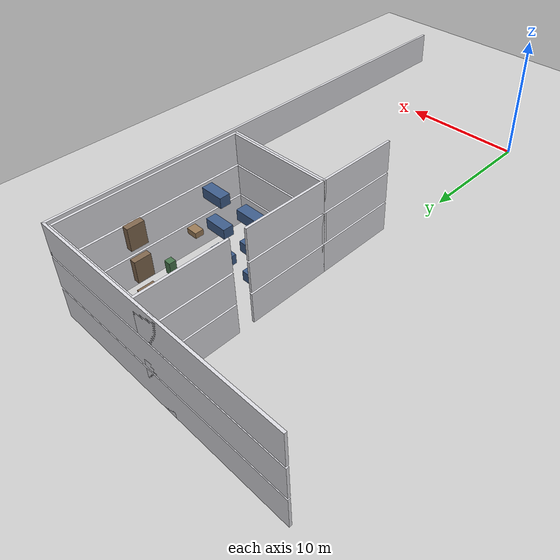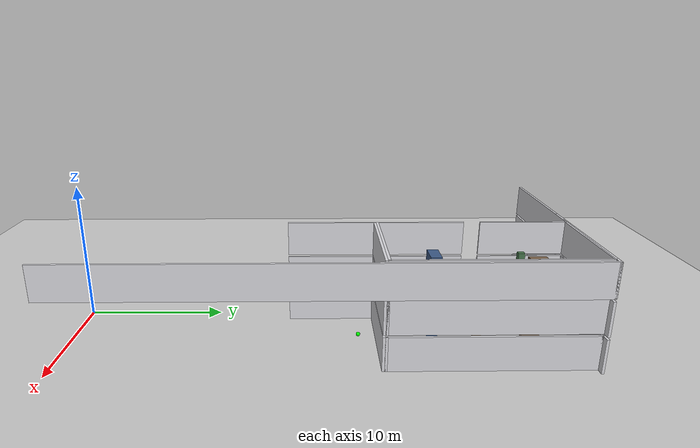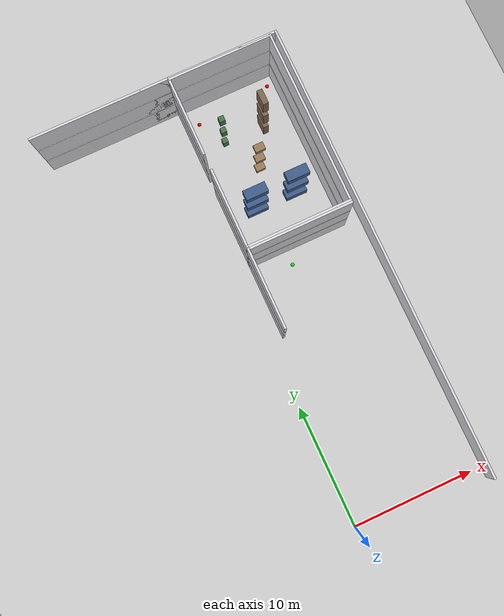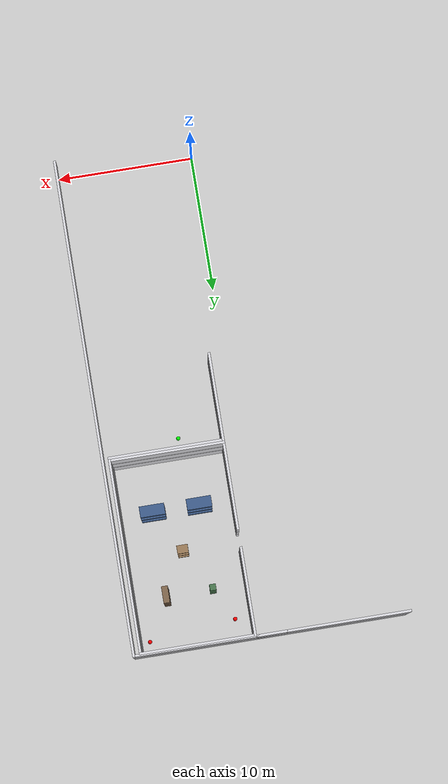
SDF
<sdf version="1.7">
 <world name="generated_world">
  <include><uri>model://sun</uri></include>
  <include><uri>model://ground_plane</uri></include>
  <model name="generated_building">
   <static>true</static>
   <link name="exterior_north_floor_0">
    <pose>0.0000 35.9100 1.2250 0.0000 0.0000 0.0000</pose>
    <collision name="exterior_north_floor_0_collision">
     <geometry><box><size>20.0000 0.1800 2.4500</size></box></geometry>
    </collision>
    <visual name="exterior_north_floor_0_visual">
     <geometry><box><size>20.0000 0.1800 2.4500</size></box></geometry>
     <material><ambient>0.86 0.86 0.88 1</ambient><diffuse>0.86 0.86 0.88 1</diffuse></material>
    </visual>
    <gravity>false</gravity>
   </link>
   <link name="north_end_wall_floor_0">
    <pose>0.0000 35.9100 1.2250 0.0000 0.0000 0.0000</pose>
    <collision name="north_end_wall_floor_0_collision">
     <geometry><box><size>2.2000 0.1800 2.4500</size></box></geometry>
    </collision>
    <visual name="north_end_wall_floor_0_visual">
     <geometry><box><size>2.2000 0.1800 2.4500</size></box></geometry>
     <material><ambient>0.86 0.86 0.88 1</ambient><diffuse>0.86 0.86 0.88 1</diffuse></material>
    </visual>
    <gravity>false</gravity>
   </link>
   <link name="floor_0_room_1_corridor_wall_upper">
    <pose>1.1900 18.6725 1.2250 0.0000 0.0000 0.0000</pose>
    <collision name="floor_0_room_1_corridor_wall_upper_collision">
     <geometry><box><size>0.1800 6.4150 2.4500</size></box></geometry>
    </collision>
    <visual name="floor_0_room_1_corridor_wall_upper_visual">
     <geometry><box><size>0.1800 6.4150 2.4500</size></box></geometry>
     <material><ambient>0.86 0.86 0.88 1</ambient><diffuse>0.86 0.86 0.88 1</diffuse></material>
    </visual>
    <gravity>false</gravity>
   </link>
   <link name="floor_0_room_1_north_wall">
    <pose>5.3000 21.7900 1.2250 0.0000 0.0000 0.0000</pose>
    <collision name="floor_0_room_1_north_wall_collision">
     <geometry><box><size>8.4000 0.1800 2.4500</size></box></geometry>
    </collision>
    <visual name="floor_0_room_1_north_wall_visual">
     <geometry><box><size>8.4000 0.1800 2.4500</size></box></geometry>
     <material><ambient>0.86 0.86 0.88 1</ambient><diffuse>0.86 0.86 0.88 1</diffuse></material>
    </visual>
    <gravity>false</gravity>
   </link>
   <link name="floor_0_room_3_corridor_wall_lower">
    <pose>1.1900 25.0875 1.2250 0.0000 0.0000 0.0000</pose>
    <collision name="floor_0_room_3_corridor_wall_lower_collision">
     <geometry><box><size>0.1800 6.4150 2.4500</size></box></geometry>
    </collision>
    <visual name="floor_0_room_3_corridor_wall_lower_visual">
     <geometry><box><size>0.1800 6.4150 2.4500</size></box></geometry>
     <material><ambient>0.86 0.86 0.88 1</ambient><diffuse>0.86 0.86 0.88 1</diffuse></material>
    </visual>
    <gravity>false</gravity>
   </link>
   <link name="floor_0_room_3_corridor_wall_upper">
    <pose>1.1900 32.7025 1.2250 0.0000 0.0000 0.0000</pose>
    <collision name="floor_0_room_3_corridor_wall_upper_collision">
     <geometry><box><size>0.1800 6.4150 2.4500</size></box></geometry>
    </collision>
    <visual name="floor_0_room_3_corridor_wall_upper_visual">
     <geometry><box><size>0.1800 6.4150 2.4500</size></box></geometry>
     <material><ambient>0.86 0.86 0.88 1</ambient><diffuse>0.86 0.86 0.88 1</diffuse></material>
    </visual>
    <gravity>false</gravity>
   </link>
   <link name="floor_0_room_3_east_wall">
    <pose>9.4100 28.8950 1.2250 0.0000 0.0000 0.0000</pose>
    <collision name="floor_0_room_3_east_wall_collision">
     <geometry><box><size>0.1800 14.0300 2.4500</size></box></geometry>
    </collision>
    <visual name="floor_0_room_3_east_wall_visual">
     <geometry><box><size>0.1800 14.0300 2.4500</size></box></geometry>
     <material><ambient>0.86 0.86 0.88 1</ambient><diffuse>0.86 0.86 0.88 1</diffuse></material>
    </visual>
    <gravity>false</gravity>
   </link>
   <link name="floor_0_room_3_south_wall">
    <pose>5.3000 21.9700 1.2250 0.0000 0.0000 0.0000</pose>
    <collision name="floor_0_room_3_south_wall_collision">
     <geometry><box><size>8.4000 0.1800 2.4500</size></box></geometry>
    </collision>
    <visual name="floor_0_room_3_south_wall_visual">
     <geometry><box><size>8.4000 0.1800 2.4500</size></box></geometry>
     <material><ambient>0.86 0.86 0.88 1</ambient><diffuse>0.86 0.86 0.88 1</diffuse></material>
    </visual>
    <gravity>false</gravity>
   </link>
   <link name="floor_0_room_3_north_wall">
    <pose>5.3000 35.8200 1.2250 0.0000 0.0000 0.0000</pose>
    <collision name="floor_0_room_3_north_wall_collision">
     <geometry><box><size>8.4000 0.1800 2.4500</size></box></geometry>
    </collision>
    <visual name="floor_0_room_3_north_wall_visual">
     <geometry><box><size>8.4000 0.1800 2.4500</size></box></geometry>
     <material><ambient>0.86 0.86 0.88 1</ambient><diffuse>0.86 0.86 0.88 1</diffuse></material>
    </visual>
    <gravity>false</gravity>
   </link>
   <link name="floor_0_room_3_sofa_a">
    <pose>3.6000 25.8375 0.4500 0.0000 0.0000 0.0000</pose>
    <collision name="floor_0_room_3_sofa_a_collision">
     <geometry><box><size>1.8000 0.8000 0.8000</size></box></geometry>
    </collision>
    <visual name="floor_0_room_3_sofa_a_visual">
     <geometry><box><size>1.8000 0.8000 0.8000</size></box></geometry>
     <material><ambient>0.24 0.36 0.54 1</ambient><diffuse>0.24 0.36 0.54 1</diffuse></material>
    </visual>
    <gravity>false</gravity>
   </link>
   <link name="floor_0_room_3_sofa_b">
    <pose>7.0000 25.8375 0.4500 0.0000 0.0000 3.1400</pose>
    <collision name="floor_0_room_3_sofa_b_collision">
     <geometry><box><size>1.8000 0.8000 0.8000</size></box></geometry>
    </collision>
    <visual name="floor_0_room_3_sofa_b_visual">
     <geometry><box><size>1.8000 0.8000 0.8000</size></box></geometry>
     <material><ambient>0.24 0.36 0.54 1</ambient><diffuse>0.24 0.36 0.54 1</diffuse></material>
    </visual>
    <gravity>false</gravity>
   </link>
   <link name="floor_0_room_3_coffee_table">
    <pose>5.3000 28.8950 0.2500 0.0000 0.0000 0.0000</pose>
    <collision name="floor_0_room_3_coffee_table_collision">
     <geometry><box><size>0.8000 0.6000 0.4000</size></box></geometry>
    </collision>
    <visual name="floor_0_room_3_coffee_table_visual">
     <geometry><box><size>0.8000 0.6000 0.4000</size></box></geometry>
     <material><ambient>0.60 0.48 0.34 1</ambient><diffuse>0.60 0.48 0.34 1</diffuse></material>
    </visual>
    <gravity>false</gravity>
   </link>
   <link name="floor_0_room_3_bookshelf">
    <pose>7.0000 31.9525 0.8500 0.0000 0.0000 0.0000</pose>
    <collision name="floor_0_room_3_bookshelf_collision">
     <geometry><box><size>0.4500 1.2000 1.7000</size></box></geometry>
    </collision>
    <visual name="floor_0_room_3_bookshelf_visual">
     <geometry><box><size>0.4500 1.2000 1.7000</size></box></geometry>
     <material><ambient>0.50 0.40 0.30 1</ambient><diffuse>0.50 0.40 0.30 1</diffuse></material>
    </visual>
    <gravity>false</gravity>
   </link>
   <link name="floor_0_room_3_planter">
    <pose>3.6000 31.9525 0.4500 0.0000 0.0000 0.0000</pose>
    <collision name="floor_0_room_3_planter_collision">
     <geometry><box><size>0.4500 0.4500 0.9000</size></box></geometry>
    </collision>
    <visual name="floor_0_room_3_planter_visual">
     <geometry><box><size>0.4500 0.4500 0.9000</size></box></geometry>
     <material><ambient>0.28 0.46 0.30 1</ambient><diffuse>0.28 0.46 0.30 1</diffuse></material>
    </visual>
    <gravity>false</gravity>
   </link>
   <link name="exterior_north_floor_1">
    <pose>0.0000 35.9100 3.8250 0.0000 0.0000 0.0000</pose>
    <collision name="exterior_north_floor_1_collision">
     <geometry><box><size>20.0000 0.1800 2.4500</size></box></geometry>
    </collision>
    <visual name="exterior_north_floor_1_visual">
     <geometry><box><size>20.0000 0.1800 2.4500</size></box></geometry>
     <material><ambient>0.86 0.86 0.88 1</ambient><diffuse>0.86 0.86 0.88 1</diffuse></material>
    </visual>
    <gravity>false</gravity>
   </link>
   <link name="north_end_wall_floor_1">
    <pose>0.0000 35.9100 3.8250 0.0000 0.0000 0.0000</pose>
    <collision name="north_end_wall_floor_1_collision">
     <geometry><box><size>2.2000 0.1800 2.4500</size></box></geometry>
    </collision>
    <visual name="north_end_wall_floor_1_visual">
     <geometry><box><size>2.2000 0.1800 2.4500</size></box></geometry>
     <material><ambient>0.86 0.86 0.88 1</ambient><diffuse>0.86 0.86 0.88 1</diffuse></material>
    </visual>
    <gravity>false</gravity>
   </link>
   <link name="floor_1_room_1_corridor_wall_upper">
    <pose>1.1900 18.6725 3.8250 0.0000 0.0000 0.0000</pose>
    <collision name="floor_1_room_1_corridor_wall_upper_collision">
     <geometry><box><size>0.1800 6.4150 2.4500</size></box></geometry>
    </collision>
    <visual name="floor_1_room_1_corridor_wall_upper_visual">
     <geometry><box><size>0.1800 6.4150 2.4500</size></box></geometry>
     <material><ambient>0.86 0.86 0.88 1</ambient><diffuse>0.86 0.86 0.88 1</diffuse></material>
    </visual>
    <gravity>false</gravity>
   </link>
   <link name="floor_1_room_1_north_wall">
    <pose>5.3000 21.7900 3.8250 0.0000 0.0000 0.0000</pose>
    <collision name="floor_1_room_1_north_wall_collision">
     <geometry><box><size>8.4000 0.1800 2.4500</size></box></geometry>
    </collision>
    <visual name="floor_1_room_1_north_wall_visual">
     <geometry><box><size>8.4000 0.1800 2.4500</size></box></geometry>
     <material><ambient>0.86 0.86 0.88 1</ambient><diffuse>0.86 0.86 0.88 1</diffuse></material>
    </visual>
    <gravity>false</gravity>
   </link>
   <link name="floor_1_room_3_corridor_wall_lower">
    <pose>1.1900 25.0875 3.8250 0.0000 0.0000 0.0000</pose>
    <collision name="floor_1_room_3_corridor_wall_lower_collision">
     <geometry><box><size>0.1800 6.4150 2.4500</size></box></geometry>
    </collision>
    <visual name="floor_1_room_3_corridor_wall_lower_visual">
     <geometry><box><size>0.1800 6.4150 2.4500</size></box></geometry>
     <material><ambient>0.86 0.86 0.88 1</ambient><diffuse>0.86 0.86 0.88 1</diffuse></material>
    </visual>
    <gravity>false</gravity>
   </link>
   <link name="floor_1_room_3_corridor_wall_upper">
    <pose>1.1900 32.7025 3.8250 0.0000 0.0000 0.0000</pose>
    <collision name="floor_1_room_3_corridor_wall_upper_collision">
     <geometry><box><size>0.1800 6.4150 2.4500</size></box></geometry>
    </collision>
    <visual name="floor_1_room_3_corridor_wall_upper_visual">
     <geometry><box><size>0.1800 6.4150 2.4500</size></box></geometry>
     <material><ambient>0.86 0.86 0.88 1</ambient><diffuse>0.86 0.86 0.88 1</diffuse></material>
    </visual>
    <gravity>false</gravity>
   </link>
   <link name="floor_1_room_3_east_wall">
    <pose>9.4100 28.8950 3.8250 0.0000 0.0000 0.0000</pose>
    <collision name="floor_1_room_3_east_wall_collision">
     <geometry><box><size>0.1800 14.0300 2.4500</size></box></geometry>
    </collision>
    <visual name="floor_1_room_3_east_wall_visual">
     <geometry><box><size>0.1800 14.0300 2.4500</size></box></geometry>
     <material><ambient>0.86 0.86 0.88 1</ambient><diffuse>0.86 0.86 0.88 1</diffuse></material>
    </visual>
    <gravity>false</gravity>
   </link>
   <link name="floor_1_room_3_south_wall">
    <pose>5.3000 21.9700 3.8250 0.0000 0.0000 0.0000</pose>
    <collision name="floor_1_room_3_south_wall_collision">
     <geometry><box><size>8.4000 0.1800 2.4500</size></box></geometry>
    </collision>
    <visual name="floor_1_room_3_south_wall_visual">
     <geometry><box><size>8.4000 0.1800 2.4500</size></box></geometry>
     <material><ambient>0.86 0.86 0.88 1</ambient><diffuse>0.86 0.86 0.88 1</diffuse></material>
    </visual>
    <gravity>false</gravity>
   </link>
   <link name="floor_1_room_3_north_wall">
    <pose>5.3000 35.8200 3.8250 0.0000 0.0000 0.0000</pose>
    <collision name="floor_1_room_3_north_wall_collision">
     <geometry><box><size>8.4000 0.1800 2.4500</size></box></geometry>
    </collision>
    <visual name="floor_1_room_3_north_wall_visual">
     <geometry><box><size>8.4000 0.1800 2.4500</size></box></geometry>
     <material><ambient>0.86 0.86 0.88 1</ambient><diffuse>0.86 0.86 0.88 1</diffuse></material>
    </visual>
    <gravity>false</gravity>
   </link>
   <link name="floor_1_room_3_sofa_a">
    <pose>3.6000 25.8375 3.0500 0.0000 0.0000 0.0000</pose>
    <collision name="floor_1_room_3_sofa_a_collision">
     <geometry><box><size>1.8000 0.8000 0.8000</size></box></geometry>
    </collision>
    <visual name="floor_1_room_3_sofa_a_visual">
     <geometry><box><size>1.8000 0.8000 0.8000</size></box></geometry>
     <material><ambient>0.24 0.36 0.54 1</ambient><diffuse>0.24 0.36 0.54 1</diffuse></material>
    </visual>
    <gravity>false</gravity>
   </link>
   <link name="floor_1_room_3_sofa_b">
    <pose>7.0000 25.8375 3.0500 0.0000 0.0000 3.1400</pose>
    <collision name="floor_1_room_3_sofa_b_collision">
     <geometry><box><size>1.8000 0.8000 0.8000</size></box></geometry>
    </collision>
    <visual name="floor_1_room_3_sofa_b_visual">
     <geometry><box><size>1.8000 0.8000 0.8000</size></box></geometry>
     <material><ambient>0.24 0.36 0.54 1</ambient><diffuse>0.24 0.36 0.54 1</diffuse></material>
    </visual>
    <gravity>false</gravity>
   </link>
   <link name="floor_1_room_3_coffee_table">
    <pose>5.3000 28.8950 2.8500 0.0000 0.0000 0.0000</pose>
    <collision name="floor_1_room_3_coffee_table_collision">
     <geometry><box><size>0.8000 0.6000 0.4000</size></box></geometry>
    </collision>
    <visual name="floor_1_room_3_coffee_table_visual">
     <geometry><box><size>0.8000 0.6000 0.4000</size></box></geometry>
     <material><ambient>0.60 0.48 0.34 1</ambient><diffuse>0.60 0.48 0.34 1</diffuse></material>
    </visual>
    <gravity>false</gravity>
   </link>
   <link name="floor_1_room_3_bookshelf">
    <pose>7.0000 31.9525 3.4500 0.0000 0.0000 0.0000</pose>
    <collision name="floor_1_room_3_bookshelf_collision">
     <geometry><box><size>0.4500 1.2000 1.7000</size></box></geometry>
    </collision>
    <visual name="floor_1_room_3_bookshelf_visual">
     <geometry><box><size>0.4500 1.2000 1.7000</size></box></geometry>
     <material><ambient>0.50 0.40 0.30 1</ambient><diffuse>0.50 0.40 0.30 1</diffuse></material>
    </visual>
    <gravity>false</gravity>
   </link>
   <link name="floor_1_room_3_planter">
    <pose>3.6000 31.9525 3.0500 0.0000 0.0000 0.0000</pose>
    <collision name="floor_1_room_3_planter_collision">
     <geometry><box><size>0.4500 0.4500 0.9000</size></box></geometry>
    </collision>
    <visual name="floor_1_room_3_planter_visual">
     <geometry><box><size>0.4500 0.4500 0.9000</size></box></geometry>
     <material><ambient>0.28 0.46 0.30 1</ambient><diffuse>0.28 0.46 0.30 1</diffuse></material>
    </visual>
    <gravity>false</gravity>
   </link>
   <link name="exterior_east_floor_2">
    <pose>9.9100 18.0000 6.4250 0.0000 0.0000 0.0000</pose>
    <collision name="exterior_east_floor_2_collision">
     <geometry><box><size>0.1800 36.0000 2.4500</size></box></geometry>
    </collision>
    <visual name="exterior_east_floor_2_visual">
     <geometry><box><size>0.1800 36.0000 2.4500</size></box></geometry>
     <material><ambient>0.86 0.86 0.88 1</ambient><diffuse>0.86 0.86 0.88 1</diffuse></material>
    </visual>
    <gravity>false</gravity>
   </link>
   <link name="exterior_north_floor_2">
    <pose>0.0000 35.9100 6.4250 0.0000 0.0000 0.0000</pose>
    <collision name="exterior_north_floor_2_collision">
     <geometry><box><size>20.0000 0.1800 2.4500</size></box></geometry>
    </collision>
    <visual name="exterior_north_floor_2_visual">
     <geometry><box><size>20.0000 0.1800 2.4500</size></box></geometry>
     <material><ambient>0.86 0.86 0.88 1</ambient><diffuse>0.86 0.86 0.88 1</diffuse></material>
    </visual>
    <gravity>false</gravity>
   </link>
   <link name="north_end_wall_floor_2">
    <pose>0.0000 35.9100 6.4250 0.0000 0.0000 0.0000</pose>
    <collision name="north_end_wall_floor_2_collision">
     <geometry><box><size>2.2000 0.1800 2.4500</size></box></geometry>
    </collision>
    <visual name="north_end_wall_floor_2_visual">
     <geometry><box><size>2.2000 0.1800 2.4500</size></box></geometry>
     <material><ambient>0.86 0.86 0.88 1</ambient><diffuse>0.86 0.86 0.88 1</diffuse></material>
    </visual>
    <gravity>false</gravity>
   </link>
   <link name="floor_2_room_1_corridor_wall_upper">
    <pose>1.1900 18.6725 6.4250 0.0000 0.0000 0.0000</pose>
    <collision name="floor_2_room_1_corridor_wall_upper_collision">
     <geometry><box><size>0.1800 6.4150 2.4500</size></box></geometry>
    </collision>
    <visual name="floor_2_room_1_corridor_wall_upper_visual">
     <geometry><box><size>0.1800 6.4150 2.4500</size></box></geometry>
     <material><ambient>0.86 0.86 0.88 1</ambient><diffuse>0.86 0.86 0.88 1</diffuse></material>
    </visual>
    <gravity>false</gravity>
   </link>
   <link name="floor_2_room_1_north_wall">
    <pose>5.3000 21.7900 6.4250 0.0000 0.0000 0.0000</pose>
    <collision name="floor_2_room_1_north_wall_collision">
     <geometry><box><size>8.4000 0.1800 2.4500</size></box></geometry>
    </collision>
    <visual name="floor_2_room_1_north_wall_visual">
     <geometry><box><size>8.4000 0.1800 2.4500</size></box></geometry>
     <material><ambient>0.86 0.86 0.88 1</ambient><diffuse>0.86 0.86 0.88 1</diffuse></material>
    </visual>
    <gravity>false</gravity>
   </link>
   <link name="floor_2_room_3_corridor_wall_lower">
    <pose>1.1900 25.0875 6.4250 0.0000 0.0000 0.0000</pose>
    <collision name="floor_2_room_3_corridor_wall_lower_collision">
     <geometry><box><size>0.1800 6.4150 2.4500</size></box></geometry>
    </collision>
    <visual name="floor_2_room_3_corridor_wall_lower_visual">
     <geometry><box><size>0.1800 6.4150 2.4500</size></box></geometry>
     <material><ambient>0.86 0.86 0.88 1</ambient><diffuse>0.86 0.86 0.88 1</diffuse></material>
    </visual>
    <gravity>false</gravity>
   </link>
   <link name="floor_2_room_3_corridor_wall_upper">
    <pose>1.1900 32.7025 6.4250 0.0000 0.0000 0.0000</pose>
    <collision name="floor_2_room_3_corridor_wall_upper_collision">
     <geometry><box><size>0.1800 6.4150 2.4500</size></box></geometry>
    </collision>
    <visual name="floor_2_room_3_corridor_wall_upper_visual">
     <geometry><box><size>0.1800 6.4150 2.4500</size></box></geometry>
     <material><ambient>0.86 0.86 0.88 1</ambient><diffuse>0.86 0.86 0.88 1</diffuse></material>
    </visual>
    <gravity>false</gravity>
   </link>
   <link name="floor_2_room_3_east_wall">
    <pose>9.4100 28.8950 6.4250 0.0000 0.0000 0.0000</pose>
    <collision name="floor_2_room_3_east_wall_collision">
     <geometry><box><size>0.1800 14.0300 2.4500</size></box></geometry>
    </collision>
    <visual name="floor_2_room_3_east_wall_visual">
     <geometry><box><size>0.1800 14.0300 2.4500</size></box></geometry>
     <material><ambient>0.86 0.86 0.88 1</ambient><diffuse>0.86 0.86 0.88 1</diffuse></material>
    </visual>
    <gravity>false</gravity>
   </link>
   <link name="floor_2_room_3_south_wall">
    <pose>5.3000 21.9700 6.4250 0.0000 0.0000 0.0000</pose>
    <collision name="floor_2_room_3_south_wall_collision">
     <geometry><box><size>8.4000 0.1800 2.4500</size></box></geometry>
    </collision>
    <visual name="floor_2_room_3_south_wall_visual">
     <geometry><box><size>8.4000 0.1800 2.4500</size></box></geometry>
     <material><ambient>0.86 0.86 0.88 1</ambient><diffuse>0.86 0.86 0.88 1</diffuse></material>
    </visual>
    <gravity>false</gravity>
   </link>
   <link name="floor_2_room_3_north_wall">
    <pose>5.3000 35.8200 6.4250 0.0000 0.0000 0.0000</pose>
    <collision name="floor_2_room_3_north_wall_collision">
     <geometry><box><size>8.4000 0.1800 2.4500</size></box></geometry>
    </collision>
    <visual name="floor_2_room_3_north_wall_visual">
     <geometry><box><size>8.4000 0.1800 2.4500</size></box></geometry>
     <material><ambient>0.86 0.86 0.88 1</ambient><diffuse>0.86 0.86 0.88 1</diffuse></material>
    </visual>
    <gravity>false</gravity>
   </link>
   <link name="floor_2_room_3_sofa_a">
    <pose>3.6000 25.8375 5.6500 0.0000 0.0000 0.0000</pose>
    <collision name="floor_2_room_3_sofa_a_collision">
     <geometry><box><size>1.8000 0.8000 0.8000</size></box></geometry>
    </collision>
    <visual name="floor_2_room_3_sofa_a_visual">
     <geometry><box><size>1.8000 0.8000 0.8000</size></box></geometry>
     <material><ambient>0.24 0.36 0.54 1</ambient><diffuse>0.24 0.36 0.54 1</diffuse></material>
    </visual>
    <gravity>false</gravity>
   </link>
   <link name="floor_2_room_3_sofa_b">
    <pose>7.0000 25.8375 5.6500 0.0000 0.0000 3.1400</pose>
    <collision name="floor_2_room_3_sofa_b_collision">
     <geometry><box><size>1.8000 0.8000 0.8000</size></box></geometry>
    </collision>
    <visual name="floor_2_room_3_sofa_b_visual">
     <geometry><box><size>1.8000 0.8000 0.8000</size></box></geometry>
     <material><ambient>0.24 0.36 0.54 1</ambient><diffuse>0.24 0.36 0.54 1</diffuse></material>
    </visual>
    <gravity>false</gravity>
   </link>
   <link name="floor_2_room_3_coffee_table">
    <pose>5.3000 28.8950 5.4500 0.0000 0.0000 0.0000</pose>
    <collision name="floor_2_room_3_coffee_table_collision">
     <geometry><box><size>0.8000 0.6000 0.4000</size></box></geometry>
    </collision>
    <visual name="floor_2_room_3_coffee_table_visual">
     <geometry><box><size>0.8000 0.6000 0.4000</size></box></geometry>
     <material><ambient>0.60 0.48 0.34 1</ambient><diffuse>0.60 0.48 0.34 1</diffuse></material>
    </visual>
    <gravity>false</gravity>
   </link>
   <link name="floor_2_room_3_bookshelf">
    <pose>7.0000 31.9525 6.0500 0.0000 0.0000 0.0000</pose>
    <collision name="floor_2_room_3_bookshelf_collision">
     <geometry><box><size>0.4500 1.2000 1.7000</size></box></geometry>
    </collision>
    <visual name="floor_2_room_3_bookshelf_visual">
     <geometry><box><size>0.4500 1.2000 1.7000</size></box></geometry>
     <material><ambient>0.50 0.40 0.30 1</ambient><diffuse>0.50 0.40 0.30 1</diffuse></material>
    </visual>
    <gravity>false</gravity>
   </link>
   <link name="floor_2_room_3_planter">
    <pose>3.6000 31.9525 5.6500 0.0000 0.0000 0.0000</pose>
    <collision name="floor_2_room_3_planter_collision">
     <geometry><box><size>0.4500 0.4500 0.9000</size></box></geometry>
    </collision>
    <visual name="floor_2_room_3_planter_visual">
     <geometry><box><size>0.4500 0.4500 0.9000</size></box></geometry>
     <material><ambient>0.28 0.46 0.30 1</ambient><diffuse>0.28 0.46 0.30 1</diffuse></material>
    </visual>
    <gravity>false</gravity>
   </link>
  </model>
  <model name="danger_red_sphere_00">
   <static>true</static>
   <pose>8.739750 34.930795 0.150000 0.000000 0.000000 0.000000</pose>
   <link name="link">
    <collision name="collision"><geometry><sphere><radius>0.150</radius></sphere></geometry></collision>
    <visual name="visual">
     <geometry><sphere><radius>0.150</radius></sphere></geometry>
     <material><ambient>1.0 0.0 0.0 1.0</ambient><diffuse>1.0 0.0 0.0 1.0</diffuse></material>
    </visual>
   </link>
  </model>
  <model name="distractor_green_sphere_02">
   <static>true</static>
   <pose>4.314645 20.501163 0.150000 0.000000 0.000000 0.000000</pose>
   <link name="link">
    <collision name="collision"><geometry><sphere><radius>0.150</radius></sphere></geometry></collision>
    <visual name="visual">
     <geometry><sphere><radius>0.150</radius></sphere></geometry>
     <material><ambient>0.0 1.0 0.0 1.0</ambient><diffuse>0.0 1.0 0.0 1.0</diffuse></material>
    </visual>
   </link>
  </model>
  <model name="danger_red_sphere_02">
   <static>true</static>
   <pose>2.323425 34.272947 0.150000 0.000000 0.000000 0.000000</pose>
   <link name="link">
    <collision name="collision"><geometry><sphere><radius>0.150</radius></sphere></geometry></collision>
    <visual name="visual">
     <geometry><sphere><radius>0.150</radius></sphere></geometry>
     <material><ambient>1.0 0.0 0.0 1.0</ambient><diffuse>1.0 0.0 0.0 1.0</diffuse></material>
    </visual>
   </link>
  </model>
 </world>
</sdf>
